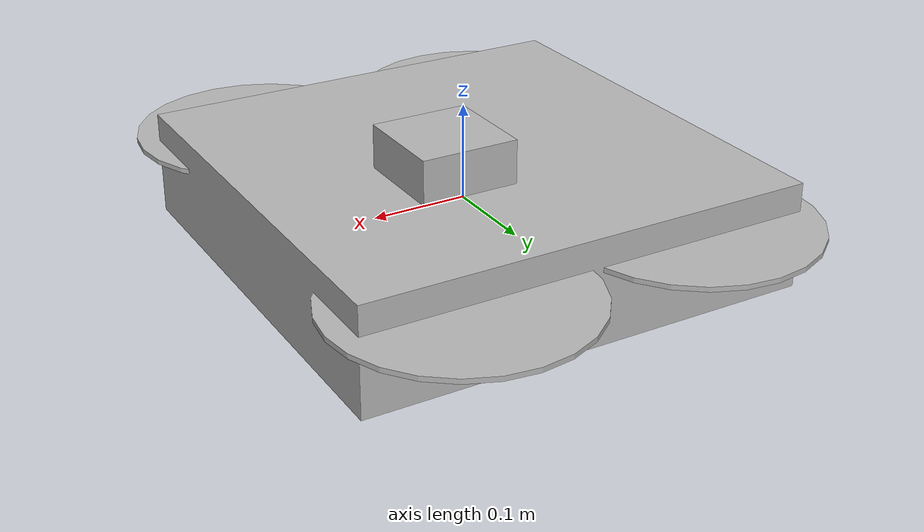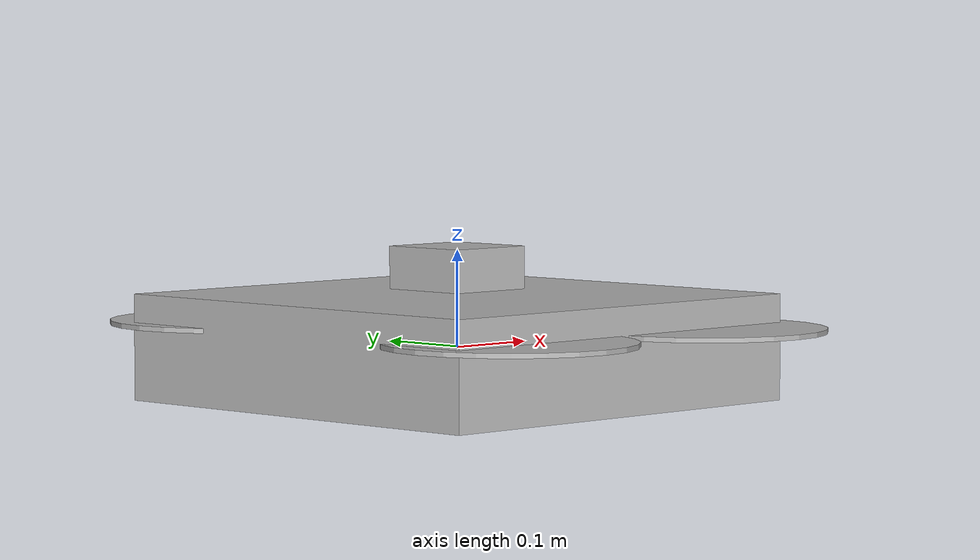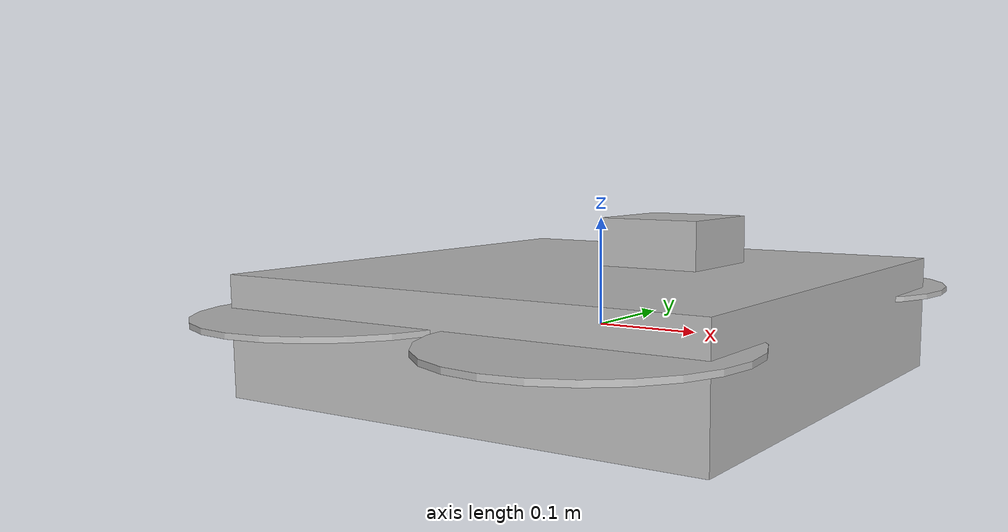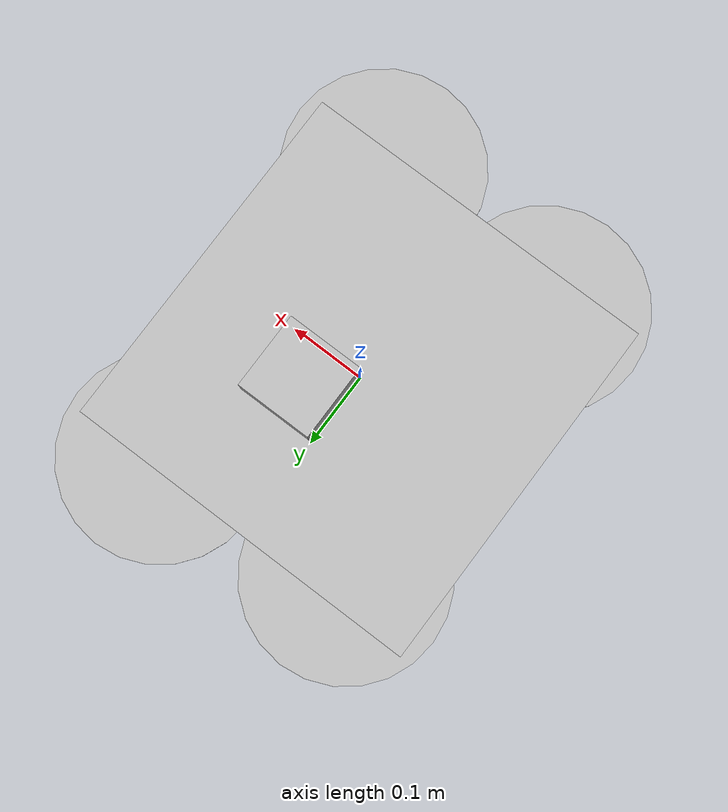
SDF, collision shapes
<?xml version='1.0'?>
<sdf version='1.5'>
  <model name='iris_kinect'>

    <include>
      <uri>model://iris</uri>
    </include>

    <include>
      <uri>model://kinect_ros</uri>
      <pose>0 0 0 0 0 0</pose>
    </include>
    <joint name="kinect_ros_joint" type="fixed">
      <child>kinect_ros::link</child>
      <parent>iris::base_link</parent>
      <axis>
        <xyz>0 0 1</xyz>
        <limit>
          <upper>0</upper>
          <lower>0</lower>
        </limit>
      </axis>
    </joint>

    <include>
      <uri>model://fpv_cam</uri>
      <pose>0 0 0 0 0 0</pose>
    </include>
    <joint name="fpv_cam_joint" type="fixed">
      <child>fpv_cam::link</child>
      <parent>iris::base_link</parent>
      <axis>
        <xyz>0 0 1</xyz>
        <limit>
          <upper>0</upper>
          <lower>0</lower>
        </limit>
      </axis>
    </joint>

    <include>
      <uri>model://fpv_cam2</uri>
      <pose>0 0 0 0 1.57 0</pose>
    </include>
    <joint name="fpv_cam2_joint" type="fixed">
      <child>fpv_cam2::link</child>
      <parent>iris::base_link</parent>
      <axis>
        <xyz>0 0 1</xyz>
        <limit>
          <upper>0</upper>
          <lower>0</lower>
        </limit>
      </axis>
    </joint>

  </model>
</sdf>

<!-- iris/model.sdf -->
<!-- DO NOT EDIT: Generated from iris.sdf.jinja -->
<sdf version='1.6'>
  <model name='iris'>
    <link name='base_link'>
      <pose>0 0 0 0 0 0</pose>
      <inertial>
        <pose>0 0 0 0 0 0</pose>
        <mass>1.5</mass>
        <inertia>
          <ixx>0.029125</ixx>
          <ixy>0</ixy>
          <ixz>0</ixz>
          <iyy>0.029125</iyy>
          <iyz>0</iyz>
          <izz>0.055225</izz>
        </inertia>
      </inertial>
      <collision name='base_link_inertia_collision'>
        <pose>0 0 0 0 0 0</pose>
        <geometry>
          <box>
            <size>0.47 0.47 0.11</size>
          </box>
        </geometry>
        <surface>
          <contact>
            <ode>
              <min_depth>0.001</min_depth>
              <max_vel>0</max_vel>
            </ode>
          </contact>
          <friction>
            <ode/>
          </friction>
        </surface>
      </collision>
      <visual name='base_link_inertia_visual'>
        <pose>0 0 0 0 0 0</pose>
        <geometry>
          <mesh>
            <scale>1 1 1</scale>
            <uri>model://iris/meshes/iris.stl</uri>
          </mesh>
        </geometry>
      </visual>
      <gravity>1</gravity>
      <velocity_decay/>
    </link>
    <link name='/imu_link'>
      <pose>0 0 0 0 0 0</pose>
      <inertial>
        <pose>0 0 0 0 0 0</pose>
        <mass>0.015</mass>
        <inertia>
          <ixx>1e-05</ixx>
          <ixy>0</ixy>
          <ixz>0</ixz>
          <iyy>1e-05</iyy>
          <iyz>0</iyz>
          <izz>1e-05</izz>
        </inertia>
      </inertial>
    </link>
    <joint name='/imu_joint' type='revolute'>
      <child>/imu_link</child>
      <parent>base_link</parent>
      <axis>
        <xyz>1 0 0</xyz>
        <limit>
          <lower>0</lower>
          <upper>0</upper>
          <effort>0</effort>
          <velocity>0</velocity>
        </limit>
        <dynamics>
          <spring_reference>0</spring_reference>
          <spring_stiffness>0</spring_stiffness>
        </dynamics>
        <use_parent_model_frame>1</use_parent_model_frame>
      </axis>
    </joint>
    <link name='rotor_0'>
      <pose>0.13 -0.22 0.023 0 0 0</pose>
      <inertial>
        <pose>0 0 0 0 0 0</pose>
        <mass>0.005</mass>
        <inertia>
          <ixx>9.75e-07</ixx>
          <ixy>0</ixy>
          <ixz>0</ixz>
          <iyy>0.000273104</iyy>
          <iyz>0</iyz>
          <izz>0.000274004</izz>
        </inertia>
      </inertial>
      <collision name='rotor_0_collision'>
        <pose>0 0 0 0 0 0</pose>
        <geometry>
          <cylinder>
            <length>0.005</length>
            <radius>0.128</radius>
          </cylinder>
        </geometry>
        <surface>
          <contact>
            <ode/>
          </contact>
          <friction>
            <ode/>
          </friction>
        </surface>
      </collision>
      <visual name='rotor_0_visual'>
        <pose>0 0 0 0 0 0</pose>
        <geometry>
          <mesh>
            <scale>1 1 1</scale>
            <uri>model://iris/meshes/iris_prop_ccw.dae</uri>
          </mesh>
        </geometry>
      </visual>
      <gravity>1</gravity>
      <velocity_decay/>
    </link>
    <joint name='rotor_0_joint' type='revolute'>
      <child>rotor_0</child>
      <parent>base_link</parent>
      <axis>
        <xyz>0 0 1</xyz>
        <limit>
          <lower>-1e+16</lower>
          <upper>1e+16</upper>
        </limit>
        <dynamics>
          <spring_reference>0</spring_reference>
          <spring_stiffness>0</spring_stiffness>
        </dynamics>
        <use_parent_model_frame>1</use_parent_model_frame>
      </axis>
    </joint>
    <link name='rotor_1'>
      <pose>-0.13 0.2 0.023 0 0 0</pose>
      <inertial>
        <pose>0 0 0 0 0 0</pose>
        <mass>0.005</mass>
        <inertia>
          <ixx>9.75e-07</ixx>
          <ixy>0</ixy>
          <ixz>0</ixz>
          <iyy>0.000273104</iyy>
          <iyz>0</iyz>
          <izz>0.000274004</izz>
        </inertia>
      </inertial>
      <collision name='rotor_1_collision'>
        <pose>0 0 0 0 0 0</pose>
        <geometry>
          <cylinder>
            <length>0.005</length>
            <radius>0.128</radius>
          </cylinder>
        </geometry>
        <surface>
          <contact>
            <ode/>
          </contact>
          <friction>
            <ode/>
          </friction>
        </surface>
      </collision>
      <visual name='rotor_1_visual'>
        <pose>0 0 0 0 0 0</pose>
        <geometry>
          <mesh>
            <scale>1 1 1</scale>
            <uri>model://iris/meshes/iris_prop_ccw.dae</uri>
          </mesh>
        </geometry>
      </visual>
      <gravity>1</gravity>
      <velocity_decay/>
    </link>
    <joint name='rotor_1_joint' type='revolute'>
      <child>rotor_1</child>
      <parent>base_link</parent>
      <axis>
        <xyz>0 0 1</xyz>
        <limit>
          <lower>-1e+16</lower>
          <upper>1e+16</upper>
        </limit>
        <dynamics>
          <spring_reference>0</spring_reference>
          <spring_stiffness>0</spring_stiffness>
        </dynamics>
        <use_parent_model_frame>1</use_parent_model_frame>
      </axis>
    </joint>
    <link name='rotor_2'>
      <pose>0.13 0.22 0.023 0 0 0</pose>
      <inertial>
        <pose>0 0 0 0 0 0</pose>
        <mass>0.005</mass>
        <inertia>
          <ixx>9.75e-07</ixx>
          <ixy>0</ixy>
          <ixz>0</ixz>
          <iyy>0.000273104</iyy>
          <iyz>0</iyz>
          <izz>0.000274004</izz>
        </inertia>
      </inertial>
      <collision name='rotor_2_collision'>
        <pose>0 0 0 0 0 0</pose>
        <geometry>
          <cylinder>
            <length>0.005</length>
            <radius>0.128</radius>
          </cylinder>
        </geometry>
        <surface>
          <contact>
            <ode/>
          </contact>
          <friction>
            <ode/>
          </friction>
        </surface>
      </collision>
      <visual name='rotor_2_visual'>
        <pose>0 0 0 0 0 0</pose>
        <geometry>
          <mesh>
            <scale>1 1 1</scale>
            <uri>model://iris/meshes/iris_prop_cw.dae</uri>
          </mesh>
        </geometry>
      </visual>
      <gravity>1</gravity>
      <velocity_decay/>
    </link>
    <joint name='rotor_2_joint' type='revolute'>
      <child>rotor_2</child>
      <parent>base_link</parent>
      <axis>
        <xyz>0 0 1</xyz>
        <limit>
          <lower>-1e+16</lower>
          <upper>1e+16</upper>
        </limit>
        <dynamics>
          <spring_reference>0</spring_reference>
          <spring_stiffness>0</spring_stiffness>
        </dynamics>
        <use_parent_model_frame>1</use_parent_model_frame>
      </axis>
    </joint>
    <link name='rotor_3'>
      <pose>-0.13 -0.2 0.023 0 0 0</pose>
      <inertial>
        <pose>0 0 0 0 0 0</pose>
        <mass>0.005</mass>
        <inertia>
          <ixx>9.75e-07</ixx>
          <ixy>0</ixy>
          <ixz>0</ixz>
          <iyy>0.000273104</iyy>
          <iyz>0</iyz>
          <izz>0.000274004</izz>
        </inertia>
      </inertial>
      <collision name='rotor_3_collision'>
        <pose>0 0 0 0 0 0</pose>
        <geometry>
          <cylinder>
            <length>0.005</length>
            <radius>0.128</radius>
          </cylinder>
        </geometry>
        <surface>
          <contact>
            <ode/>
          </contact>
          <friction>
            <ode/>
          </friction>
        </surface>
      </collision>
      <visual name='rotor_3_visual'>
        <pose>0 0 0 0 0 0</pose>
        <geometry>
          <mesh>
            <scale>1 1 1</scale>
            <uri>model://iris/meshes/iris_prop_cw.dae</uri>
          </mesh>
        </geometry>
      </visual>
      <gravity>1</gravity>
      <velocity_decay/>
    </link>
    <joint name='rotor_3_joint' type='revolute'>
      <child>rotor_3</child>
      <parent>base_link</parent>
      <axis>
        <xyz>0 0 1</xyz>
        <limit>
          <lower>-1e+16</lower>
          <upper>1e+16</upper>
        </limit>
        <dynamics>
          <spring_reference>0</spring_reference>
          <spring_stiffness>0</spring_stiffness>
        </dynamics>
        <use_parent_model_frame>1</use_parent_model_frame>
      </axis>
    </joint>
    <plugin name='rosbag' filename='libgazebo_multirotor_base_plugin.so'>
      <robotNamespace/>
      <linkName>base_link</linkName>
      <rotorVelocitySlowdownSim>10</rotorVelocitySlowdownSim>
    </plugin>
    <plugin name='front_right_motor_model' filename='libgazebo_motor_model.so'>
      <robotNamespace/>
      <jointName>rotor_0_joint</jointName>
      <linkName>rotor_0</linkName>
      <turningDirection>ccw</turningDirection>
      <timeConstantUp>0.0125</timeConstantUp>
      <timeConstantDown>0.025</timeConstantDown>
      <maxRotVelocity>1100</maxRotVelocity>
      <motorConstant>5.84e-06</motorConstant>
      <momentConstant>0.06</momentConstant>
      <commandSubTopic>/gazebo/command/motor_speed</commandSubTopic>
      <motorNumber>0</motorNumber>
      <rotorDragCoefficient>0.000175</rotorDragCoefficient>
      <rollingMomentCoefficient>1e-06</rollingMomentCoefficient>
      <motorSpeedPubTopic>/motor_speed/0</motorSpeedPubTopic>
      <rotorVelocitySlowdownSim>10</rotorVelocitySlowdownSim>
    </plugin>
    <plugin name='back_left_motor_model' filename='libgazebo_motor_model.so'>
      <robotNamespace/>
      <jointName>rotor_1_joint</jointName>
      <linkName>rotor_1</linkName>
      <turningDirection>ccw</turningDirection>
      <timeConstantUp>0.0125</timeConstantUp>
      <timeConstantDown>0.025</timeConstantDown>
      <maxRotVelocity>1100</maxRotVelocity>
      <motorConstant>5.84e-06</motorConstant>
      <momentConstant>0.06</momentConstant>
      <commandSubTopic>/gazebo/command/motor_speed</commandSubTopic>
      <motorNumber>1</motorNumber>
      <rotorDragCoefficient>0.000175</rotorDragCoefficient>
      <rollingMomentCoefficient>1e-06</rollingMomentCoefficient>
      <motorSpeedPubTopic>/motor_speed/1</motorSpeedPubTopic>
      <rotorVelocitySlowdownSim>10</rotorVelocitySlowdownSim>
    </plugin>
    <plugin name='front_left_motor_model' filename='libgazebo_motor_model.so'>
      <robotNamespace/>
      <jointName>rotor_2_joint</jointName>
      <linkName>rotor_2</linkName>
      <turningDirection>cw</turningDirection>
      <timeConstantUp>0.0125</timeConstantUp>
      <timeConstantDown>0.025</timeConstantDown>
      <maxRotVelocity>1100</maxRotVelocity>
      <motorConstant>5.84e-06</motorConstant>
      <momentConstant>0.06</momentConstant>
      <commandSubTopic>/gazebo/command/motor_speed</commandSubTopic>
      <motorNumber>2</motorNumber>
      <rotorDragCoefficient>0.000175</rotorDragCoefficient>
      <rollingMomentCoefficient>1e-06</rollingMomentCoefficient>
      <motorSpeedPubTopic>/motor_speed/2</motorSpeedPubTopic>
      <rotorVelocitySlowdownSim>10</rotorVelocitySlowdownSim>
    </plugin>
    <plugin name='back_right_motor_model' filename='libgazebo_motor_model.so'>
      <robotNamespace/>
      <jointName>rotor_3_joint</jointName>
      <linkName>rotor_3</linkName>
      <turningDirection>cw</turningDirection>
      <timeConstantUp>0.0125</timeConstantUp>
      <timeConstantDown>0.025</timeConstantDown>
      <maxRotVelocity>1100</maxRotVelocity>
      <motorConstant>5.84e-06</motorConstant>
      <momentConstant>0.06</momentConstant>
      <commandSubTopic>/gazebo/command/motor_speed</commandSubTopic>
      <motorNumber>3</motorNumber>
      <rotorDragCoefficient>0.000175</rotorDragCoefficient>
      <rollingMomentCoefficient>1e-06</rollingMomentCoefficient>
      <motorSpeedPubTopic>/motor_speed/3</motorSpeedPubTopic>
      <rotorVelocitySlowdownSim>10</rotorVelocitySlowdownSim>
    </plugin>
    <model name='gps0'>
      <link name='link'>
        <pose>0 0 0 0 0 0</pose>
        <inertial>
          <pose>0 0 0 0 0 0</pose>
          <mass>0.01</mass>
          <inertia>
            <ixx>2.1733e-06</ixx>
            <ixy>0</ixy>
            <ixz>0</ixz>
            <iyy>2.1733e-06</iyy>
            <iyz>0</iyz>
            <izz>1.8e-07</izz>
          </inertia>
        </inertial>
        <visual name='visual'>
          <geometry>
            <cylinder>
              <radius>0.01</radius>
              <length>0.002</length>
            </cylinder>
          </geometry>
        </visual>
        <sensor name='gps' type='gps'>
          <pose>0 0 0 0 0 0</pose>
          <plugin name='gps_plugin' filename='libgazebo_gps_plugin.so'>
            <robotNamespace/>
            <gpsNoise>1</gpsNoise>
            <gpsXYRandomWalk>2.0</gpsXYRandomWalk>
            <gpsZRandomWalk>4.0</gpsZRandomWalk>
            <gpsXYNoiseDensity>0.0002</gpsXYNoiseDensity>
            <gpsZNoiseDensity>0.0004</gpsZNoiseDensity>
            <gpsVXYNoiseDensity>0.2</gpsVXYNoiseDensity>
            <gpsVZNoiseDensity>0.4</gpsVZNoiseDensity>
          </plugin>
        </sensor>
      </link>
    </model>
    <joint name='gps0_joint' type='fixed'>
      <parent>base_link</parent>
      <child>gps0::link</child>
    </joint>
    <plugin name='groundtruth_plugin' filename='libgazebo_groundtruth_plugin.so'>
      <robotNamespace/>
    </plugin>
    <plugin name='magnetometer_plugin' filename='libgazebo_magnetometer_plugin.so'>
      <robotNamespace/>
      <pubRate>100</pubRate>
      <noiseDensity>0.0004</noiseDensity>
      <randomWalk>6.4e-06</randomWalk>
      <biasCorrelationTime>600</biasCorrelationTime>
      <magTopic>/mag</magTopic>
    </plugin>
    <plugin name='barometer_plugin' filename='libgazebo_barometer_plugin.so'>
      <robotNamespace/>
      <pubRate>50</pubRate>
      <baroTopic>/baro</baroTopic>
      <baroDriftPaPerSec>0</baroDriftPaPerSec>
    </plugin>
    <plugin name='mavlink_interface' filename='libgazebo_mavlink_interface.so'>
      <robotNamespace/>
      <imuSubTopic>/imu</imuSubTopic>
      <magSubTopic>/mag</magSubTopic>
      <baroSubTopic>/baro</baroSubTopic>
      <mavlink_addr>INADDR_ANY</mavlink_addr>
      <mavlink_tcp_port>{{ mavlink_tcp_port }}</mavlink_tcp_port>
      <mavlink_udp_port>{{ mavlink_udp_port }}</mavlink_udp_port>
      <serialEnabled>{{ serial_enabled }}</serialEnabled>
      <serialDevice>{{ serial_device }}</serialDevice>
      <baudRate>{{ serial_baudrate }}</baudRate>
      <qgc_addr>INADDR_ANY</qgc_addr>
      <qgc_udp_port>14550</qgc_udp_port>
      <sdk_addr>INADDR_ANY</sdk_addr>
      <sdk_udp_port>14540</sdk_udp_port>
      <hil_mode>{{ hil_mode }}</hil_mode>
      <hil_state_level>0</hil_state_level>
      <send_vision_estimation>0</send_vision_estimation>
      <send_odometry>1</send_odometry>
      <enable_lockstep>1</enable_lockstep>
      <use_tcp>1</use_tcp>
      <motorSpeedCommandPubTopic>/gazebo/command/motor_speed</motorSpeedCommandPubTopic>
      <control_channels>
        <channel name='rotor1'>
          <input_index>0</input_index>
          <input_offset>0</input_offset>
          <input_scaling>1000</input_scaling>
          <zero_position_disarmed>0</zero_position_disarmed>
          <zero_position_armed>100</zero_position_armed>
          <joint_control_type>velocity</joint_control_type>
        </channel>
        <channel name='rotor2'>
          <input_index>1</input_index>
          <input_offset>0</input_offset>
          <input_scaling>1000</input_scaling>
          <zero_position_disarmed>0</zero_position_disarmed>
          <zero_position_armed>100</zero_position_armed>
          <joint_control_type>velocity</joint_control_type>
        </channel>
        <channel name='rotor3'>
          <input_index>2</input_index>
          <input_offset>0</input_offset>
          <input_scaling>1000</input_scaling>
          <zero_position_disarmed>0</zero_position_disarmed>
          <zero_position_armed>100</zero_position_armed>
          <joint_control_type>velocity</joint_control_type>
        </channel>
        <channel name='rotor4'>
          <input_index>3</input_index>
          <input_offset>0</input_offset>
          <input_scaling>1000</input_scaling>
          <zero_position_disarmed>0</zero_position_disarmed>
          <zero_position_armed>100</zero_position_armed>
          <joint_control_type>velocity</joint_control_type>
        </channel>
        <channel name='rotor5'>
          <input_index>4</input_index>
          <input_offset>1</input_offset>
          <input_scaling>324.6</input_scaling>
          <zero_position_disarmed>0</zero_position_disarmed>
          <zero_position_armed>0</zero_position_armed>
          <joint_control_type>velocity</joint_control_type>
          <joint_control_pid>
            <p>0.1</p>
            <i>0</i>
            <d>0</d>
            <iMax>0.0</iMax>
            <iMin>0.0</iMin>
            <cmdMax>2</cmdMax>
            <cmdMin>-2</cmdMin>
          </joint_control_pid>
          <joint_name>zephyr_delta_wing::propeller_joint</joint_name>
        </channel>
        <channel name='rotor6'>
          <input_index>5</input_index>
          <input_offset>0</input_offset>
          <input_scaling>0.524</input_scaling>
          <zero_position_disarmed>0</zero_position_disarmed>
          <zero_position_armed>0</zero_position_armed>
          <joint_control_type>position</joint_control_type>
          <joint_name>zephyr_delta_wing::flap_left_joint</joint_name>
          <joint_control_pid>
            <p>10.0</p>
            <i>0</i>
            <d>0</d>
            <iMax>0</iMax>
            <iMin>0</iMin>
            <cmdMax>20</cmdMax>
            <cmdMin>-20</cmdMin>
          </joint_control_pid>
        </channel>
        <channel name='rotor7'>
          <input_index>6</input_index>
          <input_offset>0</input_offset>
          <input_scaling>0.524</input_scaling>
          <zero_position_disarmed>0</zero_position_disarmed>
          <zero_position_armed>0</zero_position_armed>
          <joint_control_type>position</joint_control_type>
          <joint_name>zephyr_delta_wing::flap_right_joint</joint_name>
          <joint_control_pid>
            <p>10.0</p>
            <i>0</i>
            <d>0</d>
            <iMax>0</iMax>
            <iMin>0</iMin>
            <cmdMax>20</cmdMax>
            <cmdMin>-20</cmdMin>
          </joint_control_pid>
        </channel>
        <channel name='rotor8'>
          <input_index>7</input_index>
          <input_offset>0</input_offset>
          <input_scaling>0.524</input_scaling>
          <zero_position_disarmed>0</zero_position_disarmed>
          <zero_position_armed>0</zero_position_armed>
          <joint_control_type>position</joint_control_type>
        </channel>
      </control_channels>
    </plugin>
    <static>0</static>
    <plugin name='rotors_gazebo_imu_plugin' filename='libgazebo_imu_plugin.so'>
      <robotNamespace/>
      <linkName>/imu_link</linkName>
      <imuTopic>/imu</imuTopic>
      <gyroscopeNoiseDensity>0.00018665</gyroscopeNoiseDensity>
      <gyroscopeRandomWalk>3.8785e-05</gyroscopeRandomWalk>
      <gyroscopeBiasCorrelationTime>1000.0</gyroscopeBiasCorrelationTime>
      <gyroscopeTurnOnBiasSigma>0.0087</gyroscopeTurnOnBiasSigma>
      <accelerometerNoiseDensity>0.00186</accelerometerNoiseDensity>
      <accelerometerRandomWalk>0.006</accelerometerRandomWalk>
      <accelerometerBiasCorrelationTime>300.0</accelerometerBiasCorrelationTime>
      <accelerometerTurnOnBiasSigma>0.196</accelerometerTurnOnBiasSigma>
    </plugin>
  </model>
</sdf>

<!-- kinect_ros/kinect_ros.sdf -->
<sdf version="1.5">
  <model name="kinect_ros">
    <pose>-2 2.5 1 0 0 0</pose>
    <link name="link">
      <inertial>
        <mass>0.01</mass>
        <inertia>
          <ixx>4.16666666667e-06</ixx>
          <iyy>5.20833333333e-07</iyy>
          <izz>3.85416666667e-06</izz>
        </inertia>
      </inertial>

      <collision name="collision">
        <geometry>
          <box>
            <size>0.023000 0.076000 0.032000</size>
          </box>
        </geometry>
      </collision>
      <visual name="visual">
        <geometry>
          <box>
            <size>0.023000 0.076000 0.032000</size>
          </box>
        </geometry>
      </visual>
      <sensor type="depth" name="camera">
      <always_on>true</always_on>
      <update_rate>30.0</update_rate>
      <camera>
        <horizontal_fov>1.57</horizontal_fov>　　
        <image>
          <format>B8G8R8</format>
          <width>640</width>
          <height>480</height>
        </image>
        <clip>
          <near>0.4</near>
          <far>16.0</far>
        </clip>
      </camera>
      <plugin name="camera_plugin" filename="libgazebo_ros_openni_kinect.so">
        <baseline>0.2</baseline>
        <alwaysOn>true</alwaysOn>
        <updateRate>10.0</updateRate>
        <cameraName>kinect</cameraName>
        <imageTopicName>/kinect/rgb/image_raw</imageTopicName>
        <cameraInfoTopicName>/kinect/rgb/camera_info</cameraInfoTopicName>
        <depthImageTopicName>/kinect/depth/image_raw</depthImageTopicName>
        <depthImageCameraInfoTopicName>/kinect/depth/camera_info</depthImageCameraInfoTopicName>
        <pointCloudTopicName>/kinect/depth/points</pointCloudTopicName>
        <frameName>/camera_link</frameName>
        <pointCloudCutoff>0.4</pointCloudCutoff>
        <pointCloudCutoffMax>16.0</pointCloudCutoffMax>
        <distortionK1>0</distortionK1>
        <distortionK2>0</distortionK2>
        <distortionK3>0</distortionK3>
        <distortionT1>0</distortionT1>
        <distortionT2>0</distortionT2>
        <CxPrime>0</CxPrime>
        <Cx>0</Cx>
        <Cy>0</Cy>
        <focalLength>0</focalLength>
        <hackBaseline>0</hackBaseline>
      </plugin>
    </sensor>
      <gravity>0</gravity>
    </link>
  </model>

</sdf>

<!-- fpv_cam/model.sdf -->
<sdf version='1.9'>
    <model name="fpv_cam">
        <pose>4 0 1.0 0 0.0 3.14</pose>
        <link name="fpv_cam/base_link">
        <pose>0.05 0.05 0.05 0 0 0</pose>
        <inertial>
            <mass>0.1</mass>
            <inertia>
            <ixx>0.000166667</ixx>
            <iyy>0.000166667</iyy>
            <izz>0.000166667</izz>
            </inertia>
        </inertial>
        <collision name="collision">
            <geometry>
            <box>
                <size>0.1 0.1 0.1</size>
            </box>
            </geometry>
        </collision>
        <visual name="visual">
            <geometry>
            <box>
                <size>0.01 0.03 0.028</size>
            </box>
            </geometry>
        </visual>
        <sensor name="camera" type="camera">
            <camera>
            <horizontal_fov>1.745</horizontal_fov>
            <image>
                <width>1280</width>
                <height>720</height>
            </image>
            <clip>
                <near>0.1</near>
                <far>1000</far>
            </clip>
            </camera>
            <always_on>1</always_on>
            <update_rate>30</update_rate>
            <visualize>true</visualize>
            <topic>camera</topic>
        </sensor>
        </link>
    </model>
</sdf>

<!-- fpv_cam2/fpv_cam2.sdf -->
<sdf version='1.6'>
    <model name='fpv_cam2'>
    <pose>-0.158979 -0.04405 0.045074 0 -0 0</pose>
      <link name='link'>
        <inertial>
          <mass>0.015</mass>
          <inertia>
            <ixx>4.15e-6</ixx>
          <ixy>0</ixy>
          <ixz>0</ixz>
          <iyy>2.407e-6</iyy>
          <iyz>0</iyz>
          <izz>2.407e-6</izz>
          </inertia>
        </inertial>
        <collision name='collision'>
          <geometry>
            <box>
              <size>0.01 0.01 0.01</size>
            </box>
          </geometry>
          <max_contacts>10</max_contacts>
          <surface>
            <contact>
              <ode/>
            </contact>
            <bounce/>
            <friction>
              <ode/>
            </friction>
          </surface>
        </collision>
        <visual name='visual'>
          <geometry>
            <box>
              <size>0.01 0.01 0.01</size>
            </box>
          </geometry>
        </visual>
        <sensor name='camera' type='camera'>
          <camera name='__default__'>
            <horizontal_fov>1.744</horizontal_fov>
     　　　　　　　
            <image>
              <width>1280</width>
              <height>720</height>
            </image>
            <clip>
              <near>0.1</near>
              <far>100</far>
            </clip>
            <lens>
              <type>custom</type>
              <custom_function>
                <c1>1.05</c1>
                <c2>4</c2>
                <f>1</f>
                <fun>tan</fun>
              </custom_function>
              <scale_to_hfov>1</scale_to_hfov>
              <cutoff_angle>3.1415</cutoff_angle>
              <env_texture_size>1080</env_texture_size>
            </lens>
          </camera>
          <always_on>1</always_on>
          <update_rate>30</update_rate>
          <visualize>1</visualize>
          <plugin name='camera_plugin' filename='libgazebo_ros_camera.so'>
              <robotNamespace></robotNamespace>
            <alwaysOn>true</alwaysOn>
            <imageTopicName>image_raw</imageTopicName>
            <cameraInfoTopicName>camera_info</cameraInfoTopicName>
            <updateRate>30.0</updateRate>
            <cameraName>usb_cam2</cameraName>
            <frameName>/robot_camera_link</frameName>
            <CxPrime>320.5</CxPrime>
            <Cx>320.5</Cx>
            <Cy>240.5</Cy>
            <hackBaseline>0</hackBaseline>
            <focalLength>277.191356</focalLength>
            <distortionK1>0.0</distortionK1>
            <distortionK2>0.0</distortionK2>
            <distortionK3>0.0</distortionK3>
            <distortionT1>0.0</distortionT1>
            <distortionT2>0.0</distortionT2>
          </plugin>
        </sensor>
        <self_collide>0</self_collide>
        <kinematic>0</kinematic>
      </link>
  </model>
</sdf>
